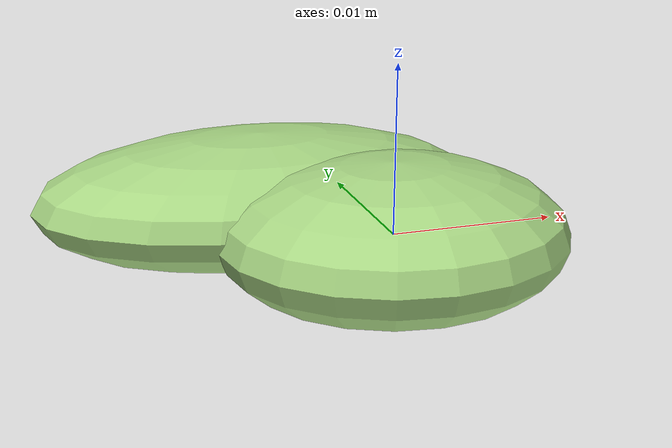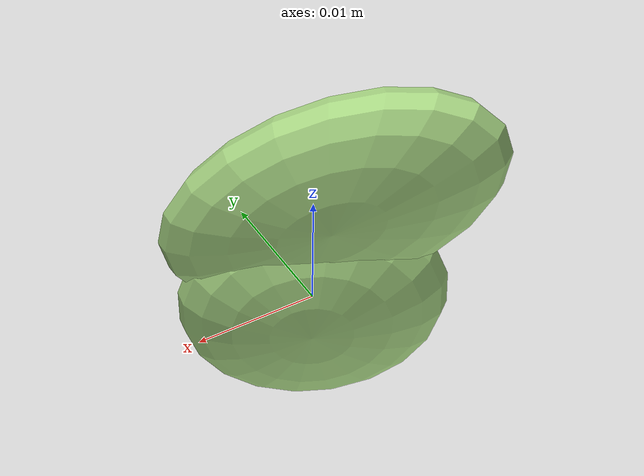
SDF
<?xml version="1.0" ?>
<!-- |    This document was autogenerated by xmacro from data/veggie_template/veggie_base.sdf.xacro  | -->
<!-- |    EDITING THIS FILE BY HAND IS NOT RECOMMENDED                                               | -->
<sdf version="1.8">
	<!-- Parameters -->
	<!-- Base -->
	<!-- Joint 0 -->
	<!-- Link 1 -->
	<!-- Joint 1 -->
	<!-- Link 2 -->
	<!-- Primitives -->
	<!-- All dimensions are half -->
	<!-- Object -->
	<model name="veggie">
		<!-- link0 -->
		<link name="link0">
			<inertial>
				<mass>0.0017534367017214621</mass>
				<inertia>
					<ixx>3.6599820869766483e-08</ixx>
					<ixy>0</ixy>
					<ixz>0</ixz>
					<iyy>4.4577790420606925e-08</iyy>
					<iyz>0</iyz>
					<izz>6.786806236767537e-08</izz>
				</inertia>
			</inertial>
			<visual name="link0_visual">
				<pose>0 0 0 0 0 0</pose>
				<geometry>
					<ellipsoid>
						<radii>0.010398995499284691 0.009240648508744908 0.004356188121759657</radii>
					</ellipsoid>
				</geometry>
				<material>
					<ambient>0.659 0.839 0.514 1</ambient>
					<diffuse>0.659 0.839 0.514 1</diffuse>
					<specular>0 0 0 0</specular>
					<emissive>0 0 0 1</emissive>
				</material>
			</visual>
			<collision name="link0_collision">
				<pose>0 0 0 0 0 0 </pose>
				<geometry>
					<ellipsoid>
						<radii>0.010398995499284691 0.009240648508744908 0.004356188121759657</radii>
					</ellipsoid>
				</geometry>
			</collision>
		</link>
		<!-- link1 -->
		<joint name="joint0" type="fixed">
			<pose relative_to="link0">-0.005980612206120081 0.007369808203297104 0.0006671126655578595 0.0 0.0 0.0</pose>
			<parent>link0</parent>
			<child>link1</child>
		</joint>
		<link name="link1">
			<pose relative_to="joint0">0 0 0 0 0 0</pose>
			<inertial>
				<mass>0.0018832118926672906</mass>
				<inertia>
					<ixx>3.155965101313098e-08</ixx>
					<ixy>0</ixy>
					<ixz>0</ixz>
					<iyy>7.872873840847447e-08</iyy>
					<iyz>0</iyz>
					<izz>9.883524422740329e-08</izz>
				</inertia>
			</inertial>
			<visual name="link1_visual">
				<pose>0 0 0 0 0 0</pose>
				<geometry>
					<ellipsoid>
						<radii>0.013922052929155361 0.008281776179579467 0.003899265376845361</radii>
					</ellipsoid>
				</geometry>
				<material>
					<ambient>0.659 0.839 0.514 1</ambient>
					<diffuse>0.659 0.839 0.514 1</diffuse>
					<specular>0 0 0 0</specular>
					<emissive>0 0 0 1</emissive>
				</material>
			</visual>
			<collision name="link1_collision">
				<pose>0 0 0 0 0 0 </pose>
				<geometry>
					<ellipsoid>
						<radii>0.013922052929155361 0.008281776179579467 0.003899265376845361</radii>
					</ellipsoid>
				</geometry>
			</collision>
		</link>
		<!-- link2 -->
	</model>
</sdf>
